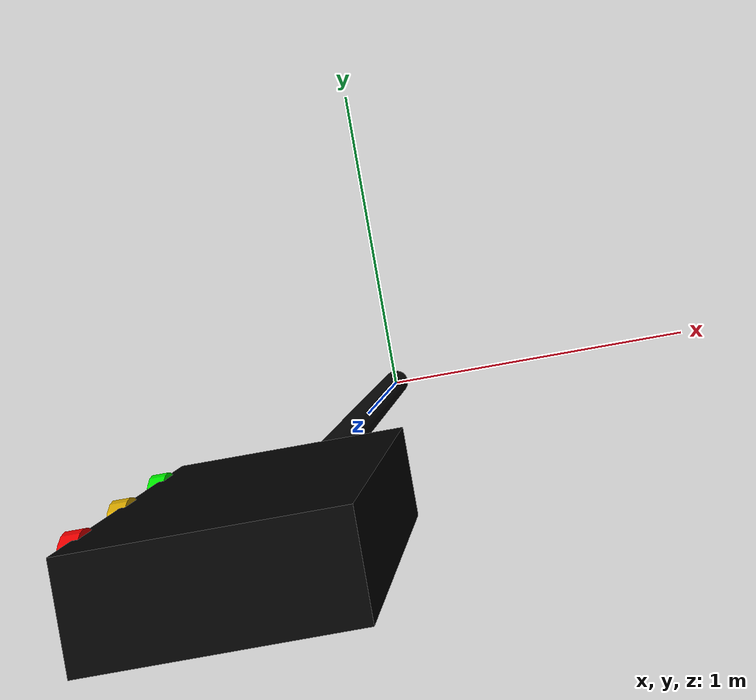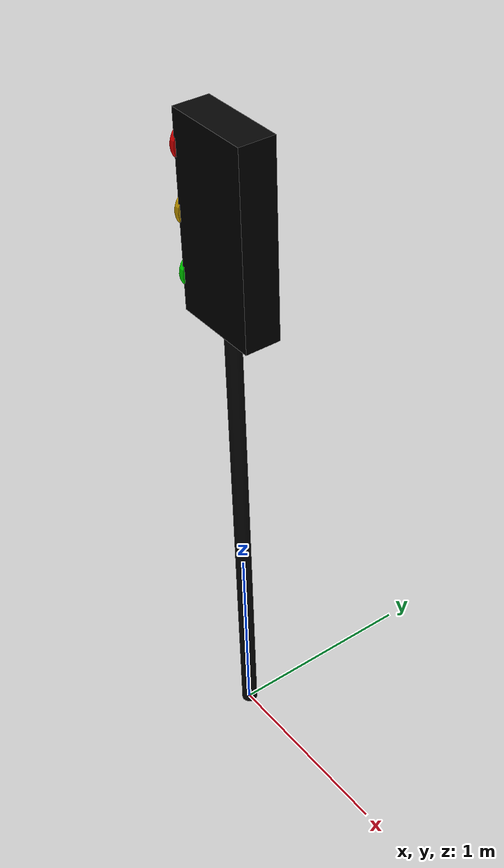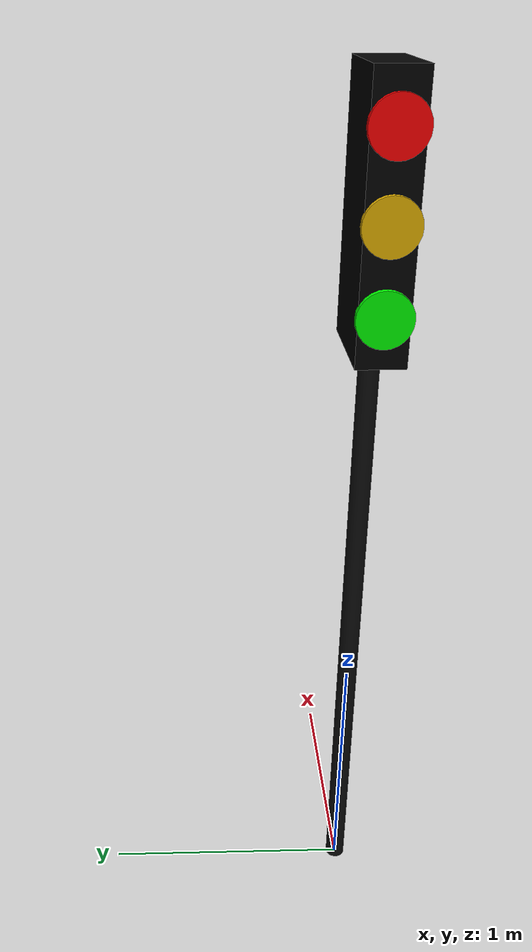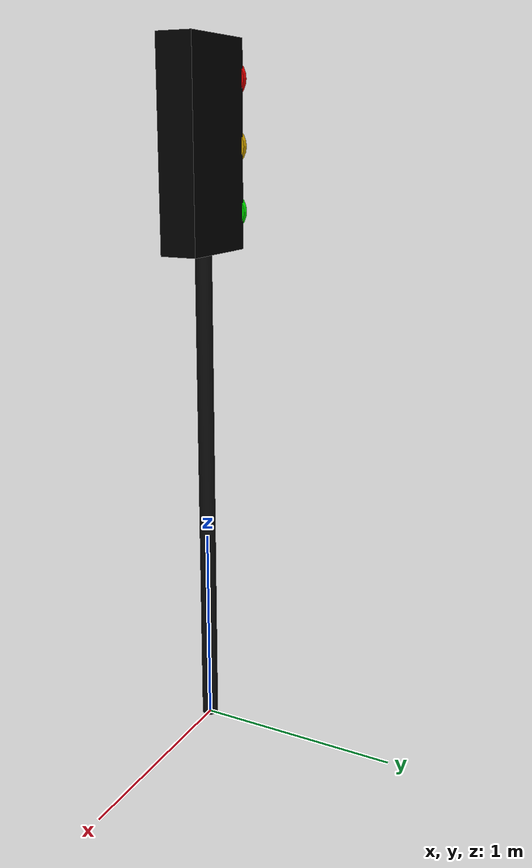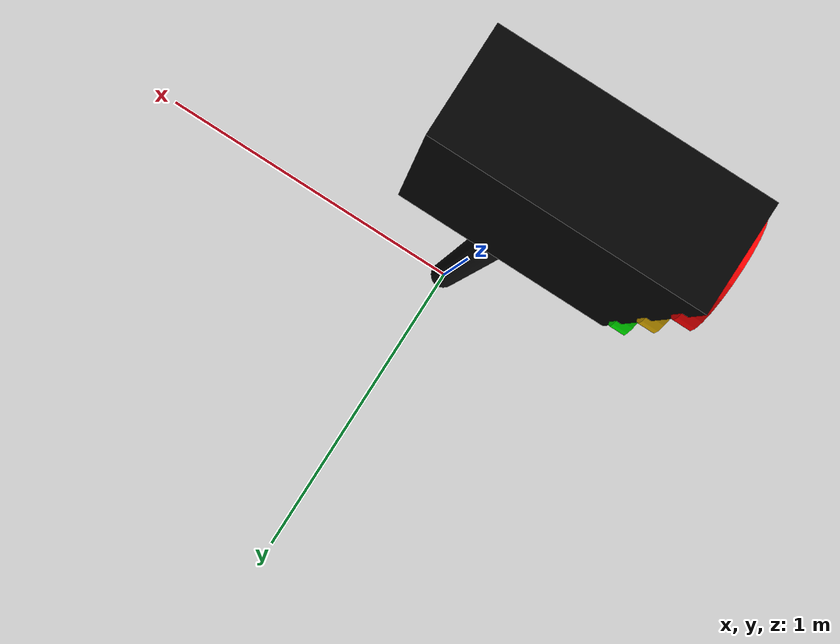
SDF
<?xml version="1.0"?>
<sdf version="1.9">
  <model name="traffic_light_model">
    <static>true</static>

    <link name="traffic_light_link">
      <pose>0 0 0 0 0 0</pose>

      <visual name="pole_visual">
        <pose>0 0 1.4 0 0 0</pose>
        <geometry>
          <cylinder>
            <radius>0.04</radius>
            <length>2.8</length>
          </cylinder>
        </geometry>
        <material>
          <ambient>0.05 0.05 0.05 1</ambient>
          <diffuse>0.05 0.05 0.05 1</diffuse>
        </material>
      </visual>

      <visual name="box_visual">
        <pose>0 0 2.9 0 0 0</pose>
        <geometry>
          <box>
            <size>0.45 0.18 0.95</size>
          </box>
        </geometry>
        <material>
          <ambient>0.01 0.01 0.01 1</ambient>
          <diffuse>0.01 0.01 0.01 1</diffuse>
        </material>
      </visual>

      <visual name="red_light">
        <pose>-0.23 0 3.20 0 1.5708 0</pose>
        <geometry>
          <cylinder>
            <radius>0.10</radius>
            <length>0.03</length>
          </cylinder>
        </geometry>
        <material>
          <ambient>1 0 0 1</ambient>
          <diffuse>1 0 0 1</diffuse>
          <emissive>1 0 0 1</emissive>
        </material>
      </visual>

      <visual name="yellow_light">
        <pose>-0.23 0 2.90 0 1.5708 0</pose>
        <geometry>
          <cylinder>
            <radius>0.10</radius>
            <length>0.03</length>
          </cylinder>
        </geometry>
        <material>
          <ambient>0.9 0.7 0 1</ambient>
          <diffuse>0.9 0.7 0 1</diffuse>
          <emissive>0.9 0.7 0 1</emissive>
        </material>
      </visual>

      <visual name="green_light">
        <pose>-0.23 0 2.60 0 1.5708 0</pose>
        <geometry>
          <cylinder>
            <radius>0.10</radius>
            <length>0.03</length>
          </cylinder>
        </geometry>
        <material>
          <ambient>0 1 0 1</ambient>
          <diffuse>0 1 0 1</diffuse>
          <emissive>0 1 0 1</emissive>
        </material>
      </visual>

      <collision name="traffic_light_collision">
        <pose>0 0 1.6 0 0 0</pose>
        <geometry>
          <box>
            <size>0.5 0.25 3.2</size>
          </box>
        </geometry>
      </collision>
    </link>
  </model>
</sdf>
